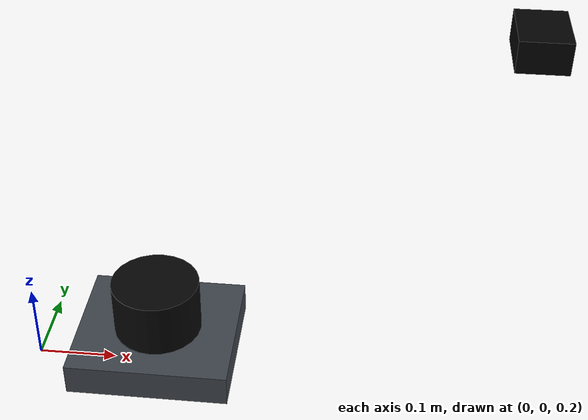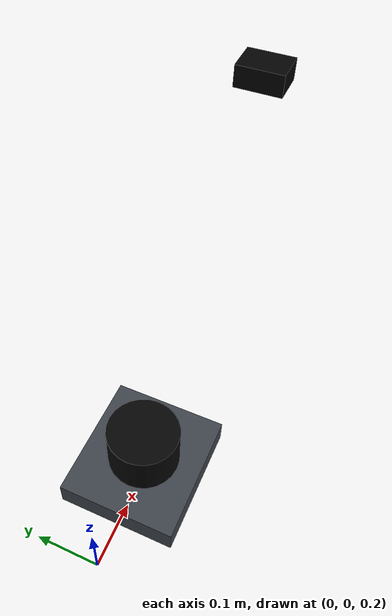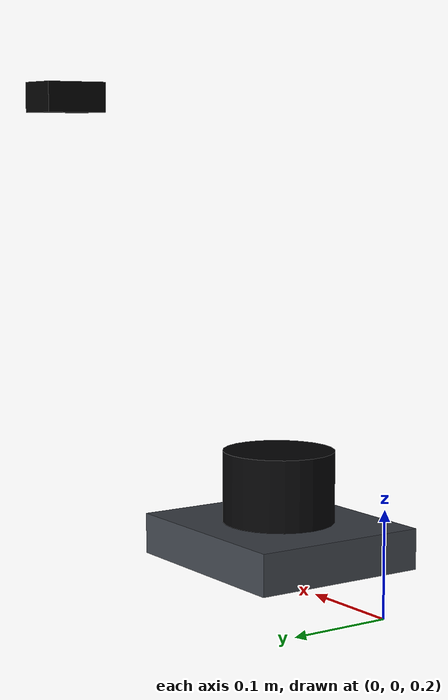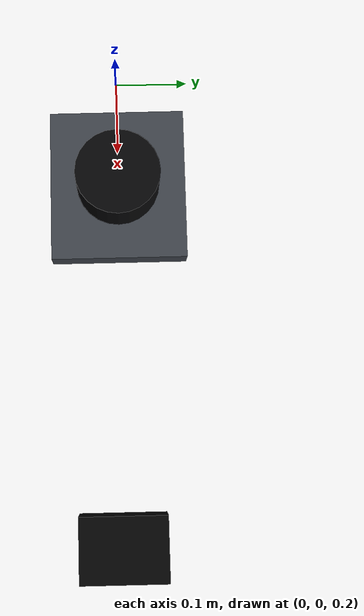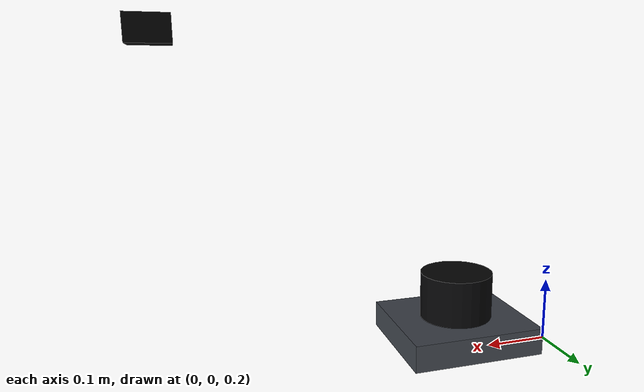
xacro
<?xml version="1.0"?>
<robot name="slam_nav_piper_mount" xmlns:xacro="http://www.ros.org/wiki/xacro">
  <xacro:arg name="mount_xyz" default="0.16 0.0 0.22"/>
  <xacro:arg name="mount_rpy" default="0 0 0"/>
  <xacro:arg name="camera_xyz" default="0.04 0.0 0.04"/>
  <xacro:arg name="camera_rpy" default="0 0 0"/>

  <xacro:property name="PI" value="3.141592653589793"/>

  <!--
    legacy 占位模型只用于缺少官方包时的接口冒烟。
    默认 piper_description.launch.py 通过 piper_description_builder 读取 AgileX 官方 Piper URDF，
    并生成项目侧 piper_* 关节链；真实规划/控制不要使用本文件的固定关节链。
  -->
  <link name="base_link"/>

  <link name="piper_mount_link">
    <visual>
      <origin xyz="0 0 0.02" rpy="0 0 0"/>
      <geometry>
        <box size="0.20 0.18 0.04"/>
      </geometry>
      <material name="piper_mount_gray">
        <color rgba="0.25 0.27 0.30 1.0"/>
      </material>
    </visual>
  </link>

  <joint name="piper_mount_joint" type="fixed">
    <parent link="base_link"/>
    <child link="piper_mount_link"/>
    <origin xyz="$(arg mount_xyz)" rpy="$(arg mount_rpy)"/>
  </joint>

  <link name="piper_base_link">
    <visual>
      <origin xyz="0 0 0.035" rpy="0 0 0"/>
      <geometry>
        <cylinder radius="0.055" length="0.07"/>
      </geometry>
      <material name="piper_base_black">
        <color rgba="0.02 0.02 0.025 1.0"/>
      </material>
    </visual>
  </link>

  <joint name="piper_base_joint" type="fixed">
    <parent link="piper_mount_link"/>
    <child link="piper_base_link"/>
    <origin xyz="0 0 0.04" rpy="0 0 0"/>
  </joint>

  <link name="piper_link1"/>
  <joint name="piper_joint1_placeholder" type="fixed">
    <parent link="piper_base_link"/>
    <child link="piper_link1"/>
    <origin xyz="0 0 0.12" rpy="0 0 0"/>
  </joint>

  <link name="piper_link2"/>
  <joint name="piper_joint2_placeholder" type="fixed">
    <parent link="piper_link1"/>
    <child link="piper_link2"/>
    <origin xyz="0.08 0 0.16" rpy="0 0 0"/>
  </joint>

  <link name="piper_link3"/>
  <joint name="piper_joint3_placeholder" type="fixed">
    <parent link="piper_link2"/>
    <child link="piper_link3"/>
    <origin xyz="0.12 0 0.08" rpy="0 0 0"/>
  </joint>

  <link name="piper_flange"/>
  <joint name="piper_flange_joint_placeholder" type="fixed">
    <parent link="piper_link3"/>
    <child link="piper_flange"/>
    <origin xyz="0.10 0 0.02" rpy="0 0 0"/>
  </joint>

  <link name="piper_tcp"/>
  <joint name="piper_tcp_joint" type="fixed">
    <parent link="piper_flange"/>
    <child link="piper_tcp"/>
    <origin xyz="0.08 0 0" rpy="0 0 0"/>
  </joint>

  <link name="piper_arm_camera_link">
    <visual>
      <origin xyz="0 0 0" rpy="0 0 0"/>
      <geometry>
        <box size="0.055 0.075 0.035"/>
      </geometry>
      <material name="piper_camera_black">
        <color rgba="0.01 0.01 0.01 1.0"/>
      </material>
    </visual>
  </link>

  <joint name="piper_arm_camera_joint" type="fixed">
    <parent link="piper_tcp"/>
    <child link="piper_arm_camera_link"/>
    <origin xyz="$(arg camera_xyz)" rpy="$(arg camera_rpy)"/>
  </joint>

  <link name="piper_arm_camera_optical_frame"/>
  <joint name="piper_arm_camera_optical_joint" type="fixed">
    <parent link="piper_arm_camera_link"/>
    <child link="piper_arm_camera_optical_frame"/>
    <!-- ROS 相机光学坐标系：x 向右，y 向下，z 向前。 -->
    <origin xyz="0 0 0" rpy="${-PI / 2} 0 ${-PI / 2}"/>
  </joint>
</robot>
